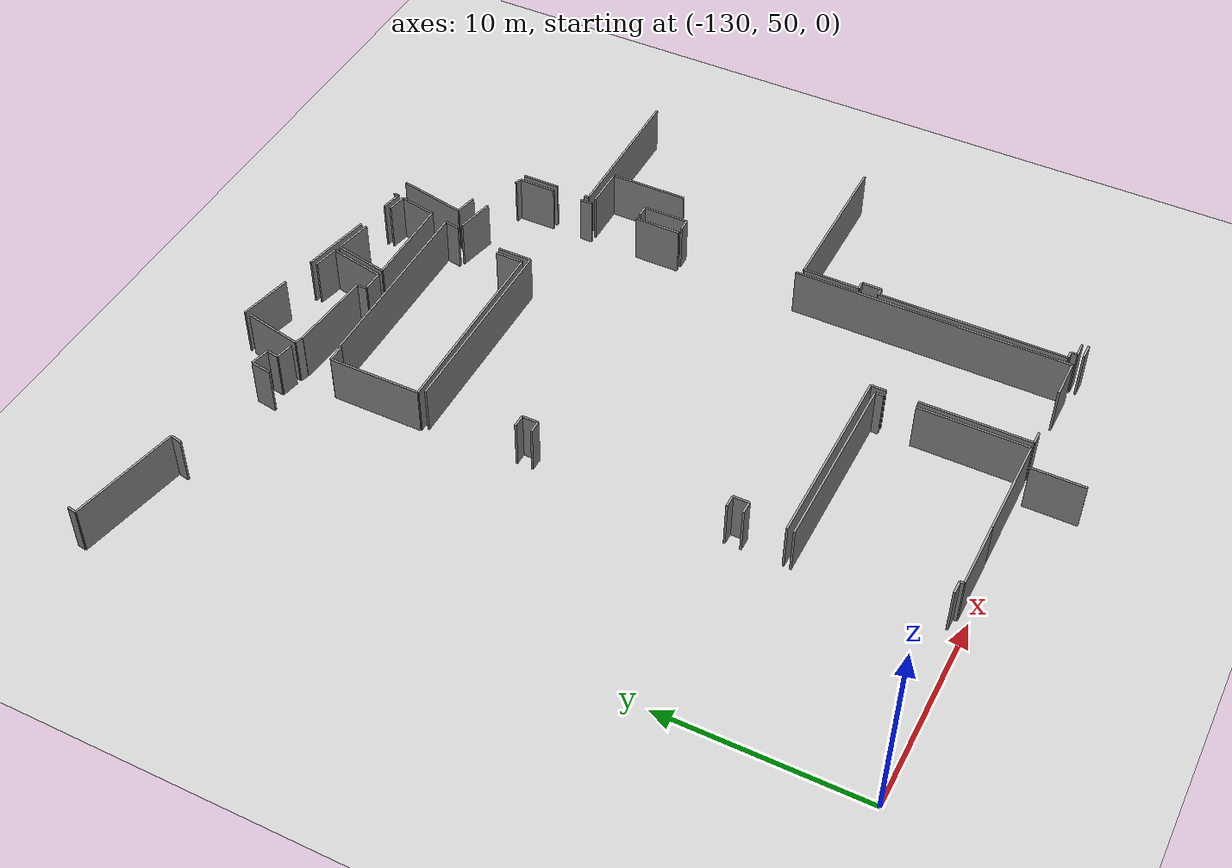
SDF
<sdf version="1.6">
 <world name="default">
  <model name="ground_plane">
   <static>1</static>
   <link name="link">
    <collision name="collision">
     <geometry><plane><normal>0 0 1</normal><size>100 100</size></plane></geometry>
     <surface><friction><ode><mu>100</mu><mu2>50</mu2></ode></friction></surface>
    </collision>
    <visual name="visual">
     <cast_shadows>0</cast_shadows>
     <geometry><plane><normal>0 0 1</normal><size>100 100</size></plane></geometry>
     <material>
      <script><uri>file://media/materials/scripts/gazebo.material</uri><name>Gazebo/Grey</name></script>
     </material>
    </visual>
   </link>
  </model>
  <model name="0510045926_A-40">
   <static>1</static>
   <link name="Wall_319">
    <collision name="Wall_319_Collision">
     <geometry><box><size>0.883386393207 0.1 2.5</size></box></geometry>
     <pose>0.441693196603 0 1.25 0 0 0</pose>
    </collision>
    <visual name="Wall_319_Visual">
     <pose>0.441693196603 0 1.25 0 0 0</pose>
     <geometry><box><size>0.883386393207 0.1 2.5</size></box></geometry>
     <material>
      <script><uri>file://media/materials/scripts/gazebo.material</uri><name>Gazebo/Grey</name></script>
      <ambient>1 1 1 1</ambient>
     </material>
    </visual>
    <pose>12.9986356396 -18.2890794058 0 0 0 2.95693310481</pose>
   </link>
   <link name="Wall_320">
    <collision name="Wall_320_Collision">
     <geometry><box><size>0.60882115773 0.1 2.5</size></box></geometry>
     <pose>0.304410578865 0 1.25 0 0 0</pose>
    </collision>
    <visual name="Wall_320_Visual">
     <pose>0.304410578865 0 1.25 0 0 0</pose>
     <geometry><box><size>0.60882115773 0.1 2.5</size></box></geometry>
     <material>
      <script><uri>file://media/materials/scripts/gazebo.material</uri><name>Gazebo/Grey</name></script>
      <ambient>1 1 1 1</ambient>
     </material>
    </visual>
    <pose>12.1302678588 -18.1268791684 0 0 0 1.41380429897</pose>
   </link>
   <link name="Wall_321">
    <collision name="Wall_321_Collision">
     <geometry><box><size>0.965517856989 0.1 2.5</size></box></geometry>
     <pose>0.482758928495 0 1.25 0 0 0</pose>
    </collision>
    <visual name="Wall_321_Visual">
     <pose>0.482758928495 0 1.25 0 0 0</pose>
     <geometry><box><size>0.965517856989 0.1 2.5</size></box></geometry>
     <material>
      <script><uri>file://media/materials/scripts/gazebo.material</uri><name>Gazebo/Grey</name></script>
      <ambient>1 1 1 1</ambient>
     </material>
    </visual>
    <pose>12.2254557916 -17.5255452682 0 0 0 2.93264764339</pose>
   </link>
   <link name="Wall_322">
    <collision name="Wall_322_Collision">
     <geometry><box><size>1.06206442476 0.1 2.5</size></box></geometry>
     <pose>0.531032212379 0 1.25 0 0 0</pose>
    </collision>
    <visual name="Wall_322_Visual">
     <pose>0.531032212379 0 1.25 0 0 0</pose>
     <geometry><box><size>1.06206442476 0.1 2.5</size></box></geometry>
     <material>
      <script><uri>file://media/materials/scripts/gazebo.material</uri><name>Gazebo/Grey</name></script>
      <ambient>1 1 1 1</ambient>
     </material>
    </visual>
    <pose>11.2809376646 -17.3252698578 0 0 0 -1.72411797897</pose>
   </link>
   <link name="Wall_323">
    <collision name="Wall_323_Collision">
     <geometry><box><size>0.588417140707 0.1 2.5</size></box></geometry>
     <pose>0.294208570354 0 1.25 0 0 0</pose>
    </collision>
    <visual name="Wall_323_Visual">
     <pose>0.294208570354 0 1.25 0 0 0</pose>
     <geometry><box><size>0.588417140707 0.1 2.5</size></box></geometry>
     <material>
      <script><uri>file://media/materials/scripts/gazebo.material</uri><name>Gazebo/Grey</name></script>
      <ambient>1 1 1 1</ambient>
     </material>
    </visual>
    <pose>5.74531516725 -17.2879561882 0 0 0 1.37763086016</pose>
   </link>
   <link name="Wall_324">
    <collision name="Wall_324_Collision">
     <geometry><box><size>5.5802253407 0.1 2.5</size></box></geometry>
     <pose>2.79011267035 0 1.25 0 0 0</pose>
    </collision>
    <visual name="Wall_324_Visual">
     <pose>2.79011267035 0 1.25 0 0 0</pose>
     <geometry><box><size>5.5802253407 0.1 2.5</size></box></geometry>
     <material>
      <script><uri>file://media/materials/scripts/gazebo.material</uri><name>Gazebo/Grey</name></script>
      <ambient>1 1 1 1</ambient>
     </material>
    </visual>
    <pose>5.85827151406 -16.7104827297 0 0 0 2.95445550031</pose>
   </link>
   <link name="Wall_325">
    <collision name="Wall_325_Collision">
     <geometry><box><size>0.440255944541 0.1 2.5</size></box></geometry>
     <pose>0.22012797227 0 1.25 0 0 0</pose>
    </collision>
    <visual name="Wall_325_Visual">
     <pose>0.22012797227 0 1.25 0 0 0</pose>
     <geometry><box><size>0.440255944541 0.1 2.5</size></box></geometry>
     <material>
      <script><uri>file://media/materials/scripts/gazebo.material</uri><name>Gazebo/Grey</name></script>
      <ambient>1 1 1 1</ambient>
     </material>
    </visual>
    <pose>0.3754719735 -15.672299677 0 0 0 1.38951435968</pose>
   </link>
   <link name="Wall_328">
    <collision name="Wall_328_Collision">
     <geometry><box><size>2.93853428884 0.1 2.5</size></box></geometry>
     <pose>1.46926714442 0 1.25 0 0 0</pose>
    </collision>
    <visual name="Wall_328_Visual">
     <pose>1.46926714442 0 1.25 0 0 0</pose>
     <geometry><box><size>2.93853428884 0.1 2.5</size></box></geometry>
     <material>
      <script><uri>file://media/materials/scripts/gazebo.material</uri><name>Gazebo/Grey</name></script>
      <ambient>1 1 1 1</ambient>
     </material>
    </visual>
    <pose>13.2808995894 -18.3418769791 0 0 0 1.37087658928</pose>
   </link>
   <link name="Wall_330">
    <collision name="Wall_330_Collision">
     <geometry><box><size>1.26859876744 0.1 2.5</size></box></geometry>
     <pose>0.63429938372 0 1.25 0 0 0</pose>
    </collision>
    <visual name="Wall_330_Visual">
     <pose>0.63429938372 0 1.25 0 0 0</pose>
     <geometry><box><size>1.26859876744 0.1 2.5</size></box></geometry>
     <material>
      <script><uri>file://media/materials/scripts/gazebo.material</uri><name>Gazebo/Grey</name></script>
      <ambient>1 1 1 1</ambient>
     </material>
    </visual>
    <pose>18.2377794559 -16.3279541575 0 0 0 -0.204105815056</pose>
   </link>
   <link name="Wall_331">
    <collision name="Wall_331_Collision">
     <geometry><box><size>2.81174349724 0.1 2.5</size></box></geometry>
     <pose>1.40587174862 0 1.25 0 0 0</pose>
    </collision>
    <visual name="Wall_331_Visual">
     <pose>1.40587174862 0 1.25 0 0 0</pose>
     <geometry><box><size>2.81174349724 0.1 2.5</size></box></geometry>
     <material>
      <script><uri>file://media/materials/scripts/gazebo.material</uri><name>Gazebo/Grey</name></script>
      <ambient>1 1 1 1</ambient>
     </material>
    </visual>
    <pose>19.4800454364 -16.585088493 0 0 0 -1.76162340053</pose>
   </link>
   <link name="Wall_332">
    <collision name="Wall_332_Collision">
     <geometry><box><size>1.06662991268 0.1 2.5</size></box></geometry>
     <pose>0.533314956338 0 1.25 0 0 0</pose>
    </collision>
    <visual name="Wall_332_Visual">
     <pose>0.533314956338 0 1.25 0 0 0</pose>
     <geometry><box><size>1.06662991268 0.1 2.5</size></box></geometry>
     <material>
      <script><uri>file://media/materials/scripts/gazebo.material</uri><name>Gazebo/Grey</name></script>
      <ambient>1 1 1 1</ambient>
     </material>
    </visual>
    <pose>18.9467391787 -19.3457923761 0 0 0 3.13588114978</pose>
   </link>
   <link name="Wall_333">
    <collision name="Wall_333_Collision">
     <geometry><box><size>0.50243585729 0.1 2.5</size></box></geometry>
     <pose>0.251217928645 0 1.25 0 0 0</pose>
    </collision>
    <visual name="Wall_333_Visual">
     <pose>0.251217928645 0 1.25 0 0 0</pose>
     <geometry><box><size>0.50243585729 0.1 2.5</size></box></geometry>
     <material>
      <script><uri>file://media/materials/scripts/gazebo.material</uri><name>Gazebo/Grey</name></script>
      <ambient>1 1 1 1</ambient>
     </material>
    </visual>
    <pose>17.8801266634 -19.3397003484 0 0 0 1.60819041423</pose>
   </link>
   <link name="Wall_334">
    <collision name="Wall_334_Collision">
     <geometry><box><size>4.22580489009 0.1 2.5</size></box></geometry>
     <pose>2.11290244504 0 1.25 0 0 0</pose>
    </collision>
    <visual name="Wall_334_Visual">
     <pose>2.11290244504 0 1.25 0 0 0</pose>
     <geometry><box><size>4.22580489009 0.1 2.5</size></box></geometry>
     <material>
      <script><uri>file://media/materials/scripts/gazebo.material</uri><name>Gazebo/Grey</name></script>
      <ambient>1 1 1 1</ambient>
     </material>
    </visual>
    <pose>17.8613429114 -18.8376157327 0 0 0 3.05534866111</pose>
   </link>
   <link name="Wall_335">
    <collision name="Wall_335_Collision">
     <geometry><box><size>0.393078255334 0.1 2.5</size></box></geometry>
     <pose>0.196539127667 0 1.25 0 0 0</pose>
    </collision>
    <visual name="Wall_335_Visual">
     <pose>0.196539127667 0 1.25 0 0 0</pose>
     <geometry><box><size>0.393078255334 0.1 2.5</size></box></geometry>
     <material>
      <script><uri>file://media/materials/scripts/gazebo.material</uri><name>Gazebo/Grey</name></script>
      <ambient>1 1 1 1</ambient>
     </material>
    </visual>
    <pose>13.6512441063 -18.473617078 0 0 0 2.79982843189</pose>
   </link>
   <link name="Wall_336">
    <collision name="Wall_336_Collision">
     <geometry><box><size>2.76106589319 0.1 2.5</size></box></geometry>
     <pose>1.38053294659 0 1.25 0 0 0</pose>
    </collision>
    <visual name="Wall_336_Visual">
     <pose>1.38053294659 0 1.25 0 0 0</pose>
     <geometry><box><size>2.76106589319 0.1 2.5</size></box></geometry>
     <material>
      <script><uri>file://media/materials/scripts/gazebo.material</uri><name>Gazebo/Grey</name></script>
      <ambient>1 1 1 1</ambient>
     </material>
    </visual>
    <pose>19.2597171015 -19.3630531212 0 0 0 1.37614127646</pose>
   </link>
   <link name="Wall_337">
    <collision name="Wall_337_Collision">
     <geometry><box><size>1.87232206468 0.1 2.5</size></box></geometry>
     <pose>0.936161032342 0 1.25 0 0 0</pose>
    </collision>
    <visual name="Wall_337_Visual">
     <pose>0.936161032342 0 1.25 0 0 0</pose>
     <geometry><box><size>1.87232206468 0.1 2.5</size></box></geometry>
     <material>
      <script><uri>file://media/materials/scripts/gazebo.material</uri><name>Gazebo/Grey</name></script>
      <ambient>1 1 1 1</ambient>
     </material>
    </visual>
    <pose>19.7937848626 -16.6541314736 0 0 0 -0.189578649141</pose>
   </link>
   <link name="Wall_338">
    <collision name="Wall_338_Collision">
     <geometry><box><size>0.961571273498 0.1 2.5</size></box></geometry>
     <pose>0.480785636749 0 1.25 0 0 0</pose>
    </collision>
    <visual name="Wall_338_Visual">
     <pose>0.480785636749 0 1.25 0 0 0</pose>
     <geometry><box><size>0.961571273498 0.1 2.5</size></box></geometry>
     <material>
      <script><uri>file://media/materials/scripts/gazebo.material</uri><name>Gazebo/Grey</name></script>
      <ambient>1 1 1 1</ambient>
     </material>
    </visual>
    <pose>23.3380758077 -17.341007596 0 0 0 -0.172439581988</pose>
   </link>
   <link name="Wall_339">
    <collision name="Wall_339_Collision">
     <geometry><box><size>1.89265710499 0.1 2.5</size></box></geometry>
     <pose>0.946328552497 0 1.25 0 0 0</pose>
    </collision>
    <visual name="Wall_339_Visual">
     <pose>0.946328552497 0 1.25 0 0 0</pose>
     <geometry><box><size>1.89265710499 0.1 2.5</size></box></geometry>
     <material>
      <script><uri>file://media/materials/scripts/gazebo.material</uri><name>Gazebo/Grey</name></script>
      <ambient>1 1 1 1</ambient>
     </material>
    </visual>
    <pose>24.285386114 -17.5060000127 0 0 0 -1.75435649003</pose>
   </link>
   <link name="Wall_340">
    <collision name="Wall_340_Collision">
     <geometry><box><size>4.68020182419 0.1 2.5</size></box></geometry>
     <pose>2.34010091209 0 1.25 0 0 0</pose>
    </collision>
    <visual name="Wall_340_Visual">
     <pose>2.34010091209 0 1.25 0 0 0</pose>
     <geometry><box><size>4.68020182419 0.1 2.5</size></box></geometry>
     <material>
      <script><uri>file://media/materials/scripts/gazebo.material</uri><name>Gazebo/Grey</name></script>
      <ambient>1 1 1 1</ambient>
     </material>
    </visual>
    <pose>23.9399173769 -19.3668606385 0 0 0 3.14077911651</pose>
   </link>
   <link name="Wall_358">
    <collision name="Wall_358_Collision">
     <geometry><box><size>0.257567093711 0.1 2.5</size></box></geometry>
     <pose>0.128783546855 0 1.25 0 0 0</pose>
    </collision>
    <visual name="Wall_358_Visual">
     <pose>0.128783546855 0 1.25 0 0 0</pose>
     <geometry><box><size>0.257567093711 0.1 2.5</size></box></geometry>
     <material>
      <script><uri>file://media/materials/scripts/gazebo.material</uri><name>Gazebo/Grey</name></script>
      <ambient>1 1 1 1</ambient>
     </material>
    </visual>
    <pose>24.3889505848 -16.9493409822 0 0 0 -1.76819188664</pose>
   </link>
   <link name="Wall_359">
    <collision name="Wall_359_Collision">
     <geometry><box><size>1.02889810982 0.1 2.5</size></box></geometry>
     <pose>0.514449054908 0 1.25 0 0 0</pose>
    </collision>
    <visual name="Wall_359_Visual">
     <pose>0.514449054908 0 1.25 0 0 0</pose>
     <geometry><box><size>1.02889810982 0.1 2.5</size></box></geometry>
     <material>
      <script><uri>file://media/materials/scripts/gazebo.material</uri><name>Gazebo/Grey</name></script>
      <ambient>1 1 1 1</ambient>
     </material>
    </visual>
    <pose>24.3384375218 -17.201906297 0 0 0 2.95097074667</pose>
   </link>
   <link name="Wall_360">
    <collision name="Wall_360_Collision">
     <geometry><box><size>3.53660576051 0.1 2.5</size></box></geometry>
     <pose>1.76830288026 0 1.25 0 0 0</pose>
    </collision>
    <visual name="Wall_360_Visual">
     <pose>1.76830288026 0 1.25 0 0 0</pose>
     <geometry><box><size>3.53660576051 0.1 2.5</size></box></geometry>
     <material>
      <script><uri>file://media/materials/scripts/gazebo.material</uri><name>Gazebo/Grey</name></script>
      <ambient>1 1 1 1</ambient>
     </material>
    </visual>
    <pose>21.6698755576 -16.6916989777 0 0 0 2.9500808692</pose>
   </link>
   <link name="Wall_361">
    <collision name="Wall_361_Collision">
     <geometry><box><size>2.68125676444 0.1 2.5</size></box></geometry>
     <pose>1.34062838222 0 1.25 0 0 0</pose>
    </collision>
    <visual name="Wall_361_Visual">
     <pose>1.34062838222 0 1.25 0 0 0</pose>
     <geometry><box><size>2.68125676444 0.1 2.5</size></box></geometry>
     <material>
      <script><uri>file://media/materials/scripts/gazebo.material</uri><name>Gazebo/Grey</name></script>
      <ambient>1 1 1 1</ambient>
     </material>
    </visual>
    <pose>16.4997747219 -15.6941294429 0 0 0 2.94377006865</pose>
   </link>
   <link name="Wall_495">
    <collision name="Wall_495_Collision">
     <geometry><box><size>1.1063864958 0.1 2.5</size></box></geometry>
     <pose>0.553193247901 0 1.25 0 0 0</pose>
    </collision>
    <visual name="Wall_495_Visual">
     <pose>0.553193247901 0 1.25 0 0 0</pose>
     <geometry><box><size>1.1063864958 0.1 2.5</size></box></geometry>
     <material>
      <script><uri>file://media/materials/scripts/gazebo.material</uri><name>Gazebo/Grey</name></script>
      <ambient>1 1 1 1</ambient>
     </material>
    </visual>
    <pose>25.7944321405 -20.628925709 0 0 0 2.94649180287</pose>
   </link>
   <link name="Wall_496">
    <collision name="Wall_496_Collision">
     <geometry><box><size>3.42832065658 0.1 2.5</size></box></geometry>
     <pose>1.71416032829 0 1.25 0 0 0</pose>
    </collision>
    <visual name="Wall_496_Visual">
     <pose>1.71416032829 0 1.25 0 0 0</pose>
     <geometry><box><size>3.42832065658 0.1 2.5</size></box></geometry>
     <material>
      <script><uri>file://media/materials/scripts/gazebo.material</uri><name>Gazebo/Grey</name></script>
      <ambient>1 1 1 1</ambient>
     </material>
    </visual>
    <pose>24.7090358732 -20.4144355673 0 0 0 1.38273760445</pose>
   </link>
   <link name="Wall_578">
    <collision name="Wall_578_Collision">
     <geometry><box><size>4.60455759822 0.1 2.5</size></box></geometry>
     <pose>2.30227879911 0 1.25 0 0 0</pose>
    </collision>
    <visual name="Wall_578_Visual">
     <pose>2.30227879911 0 1.25 0 0 0</pose>
     <geometry><box><size>4.60455759822 0.1 2.5</size></box></geometry>
     <material>
      <script><uri>file://media/materials/scripts/gazebo.material</uri><name>Gazebo/Grey</name></script>
      <ambient>1 1 1 1</ambient>
     </material>
    </visual>
    <pose>13.0986464276 -24.9956403927 0 0 0 1.57079632679</pose>
   </link>
   <link name="Wall_579">
    <collision name="Wall_579_Collision">
     <geometry><box><size>0.846538014887 0.1 2.5</size></box></geometry>
     <pose>0.423269007444 0 1.25 0 0 0</pose>
    </collision>
    <visual name="Wall_579_Visual">
     <pose>0.423269007444 0 1.25 0 0 0</pose>
     <geometry><box><size>0.846538014887 0.1 2.5</size></box></geometry>
     <material>
      <script><uri>file://media/materials/scripts/gazebo.material</uri><name>Gazebo/Grey</name></script>
      <ambient>1 1 1 1</ambient>
     </material>
    </visual>
    <pose>13.0986464276 -20.3910827945 0 0 0 0.0</pose>
   </link>
   <link name="Wall_580">
    <collision name="Wall_580_Collision">
     <geometry><box><size>0.100010787966 0.1 2.5</size></box></geometry>
     <pose>0.0500053939829 0 1.25 0 0 0</pose>
    </collision>
    <visual name="Wall_580_Visual">
     <pose>0.0500053939829 0 1.25 0 0 0</pose>
     <geometry><box><size>0.100010787966 0.1 2.5</size></box></geometry>
     <material>
      <script><uri>file://media/materials/scripts/gazebo.material</uri><name>Gazebo/Grey</name></script>
      <ambient>1 1 1 1</ambient>
     </material>
    </visual>
    <pose>13.9451844425 -20.3910827945 0 0 0 1.57079632679</pose>
   </link>
   <link name="Wall_581">
    <collision name="Wall_581_Collision">
     <geometry><box><size>9.77262775807 0.1 2.5</size></box></geometry>
     <pose>4.88631387904 0 1.25 0 0 0</pose>
    </collision>
    <visual name="Wall_581_Visual">
     <pose>4.88631387904 0 1.25 0 0 0</pose>
     <geometry><box><size>9.77262775807 0.1 2.5</size></box></geometry>
     <material>
      <script><uri>file://media/materials/scripts/gazebo.material</uri><name>Gazebo/Grey</name></script>
      <ambient>1 1 1 1</ambient>
     </material>
    </visual>
    <pose>13.9451844425 -20.2910720065 0 0 0 0.0</pose>
   </link>
   <link name="Wall_582">
    <collision name="Wall_582_Collision">
     <geometry><box><size>0.801386069186 0.1 2.5</size></box></geometry>
     <pose>0.400693034593 0 1.25 0 0 0</pose>
    </collision>
    <visual name="Wall_582_Visual">
     <pose>0.400693034593 0 1.25 0 0 0</pose>
     <geometry><box><size>0.801386069186 0.1 2.5</size></box></geometry>
     <material>
      <script><uri>file://media/materials/scripts/gazebo.material</uri><name>Gazebo/Grey</name></script>
      <ambient>1 1 1 1</ambient>
     </material>
    </visual>
    <pose>23.7178122006 -20.2910720065 0 0 0 -1.76297389449</pose>
   </link>
   <link name="Wall_583">
    <collision name="Wall_583_Collision">
     <geometry><box><size>1.39202832793 0.1 2.5</size></box></geometry>
     <pose>0.696014163964 0 1.25 0 0 0</pose>
    </collision>
    <visual name="Wall_583_Visual">
     <pose>0.696014163964 0 1.25 0 0 0</pose>
     <geometry><box><size>1.39202832793 0.1 2.5</size></box></geometry>
     <material>
      <script><uri>file://media/materials/scripts/gazebo.material</uri><name>Gazebo/Grey</name></script>
      <ambient>1 1 1 1</ambient>
     </material>
    </visual>
    <pose>22.8697511787 -23.598027706 0 0 0 -1.57079632679</pose>
   </link>
   <link name="Wall_584">
    <collision name="Wall_584_Collision">
     <geometry><box><size>9.77110634693 0.1 2.5</size></box></geometry>
     <pose>4.88555317346 0 1.25 0 0 0</pose>
    </collision>
    <visual name="Wall_584_Visual">
     <pose>4.88555317346 0 1.25 0 0 0</pose>
     <geometry><box><size>9.77110634693 0.1 2.5</size></box></geometry>
     <material>
      <script><uri>file://media/materials/scripts/gazebo.material</uri><name>Gazebo/Grey</name></script>
      <ambient>1 1 1 1</ambient>
     </material>
    </visual>
    <pose>22.8697511787 -24.990056034 0 0 0 -3.14102113601</pose>
   </link>
   <link name="Wall_585">
    <collision name="Wall_585_Collision">
     <geometry><box><size>3.38107536981 0.1 2.5</size></box></geometry>
     <pose>1.6905376849 0 1.25 0 0 0</pose>
    </collision>
    <visual name="Wall_585_Visual">
     <pose>1.6905376849 0 1.25 0 0 0</pose>
     <geometry><box><size>3.38107536981 0.1 2.5</size></box></geometry>
     <material>
      <script><uri>file://media/materials/scripts/gazebo.material</uri><name>Gazebo/Grey</name></script>
      <ambient>1 1 1 1</ambient>
     </material>
    </visual>
    <pose>17.3341286814 -50.5923100842 0 0 0 3.14159265359</pose>
   </link>
   <link name="Wall_586">
    <collision name="Wall_586_Collision">
     <geometry><box><size>0.202306086316 0.1 2.5</size></box></geometry>
     <pose>0.101153043158 0 1.25 0 0 0</pose>
    </collision>
    <visual name="Wall_586_Visual">
     <pose>0.101153043158 0 1.25 0 0 0</pose>
     <geometry><box><size>0.202306086316 0.1 2.5</size></box></geometry>
     <material>
      <script><uri>file://media/materials/scripts/gazebo.material</uri><name>Gazebo/Grey</name></script>
      <ambient>1 1 1 1</ambient>
     </material>
    </visual>
    <pose>13.9530533116 -50.5923100842 0 0 0 1.57079632679</pose>
   </link>
   <link name="Wall_587">
    <collision name="Wall_587_Collision">
     <geometry><box><size>0.664031018574 0.1 2.5</size></box></geometry>
     <pose>0.332015509287 0 1.25 0 0 0</pose>
    </collision>
    <visual name="Wall_587_Visual">
     <pose>0.332015509287 0 1.25 0 0 0</pose>
     <geometry><box><size>0.664031018574 0.1 2.5</size></box></geometry>
     <material>
      <script><uri>file://media/materials/scripts/gazebo.material</uri><name>Gazebo/Grey</name></script>
      <ambient>1 1 1 1</ambient>
     </material>
    </visual>
    <pose>13.9530533116 -50.3900039979 0 0 0 3.14159265359</pose>
   </link>
   <link name="Wall_588">
    <collision name="Wall_588_Collision">
     <geometry><box><size>9.16240965079 0.1 2.5</size></box></geometry>
     <pose>4.58120482539 0 1.25 0 0 0</pose>
    </collision>
    <visual name="Wall_588_Visual">
     <pose>4.58120482539 0 1.25 0 0 0</pose>
     <geometry><box><size>9.16240965079 0.1 2.5</size></box></geometry>
     <material>
      <script><uri>file://media/materials/scripts/gazebo.material</uri><name>Gazebo/Grey</name></script>
      <ambient>1 1 1 1</ambient>
     </material>
    </visual>
    <pose>13.289022293 -43.2735003141 0 0 0 0.0</pose>
   </link>
   <link name="Wall_589">
    <collision name="Wall_589_Collision">
     <geometry><box><size>0.417811565968 0.1 2.5</size></box></geometry>
     <pose>0.208905782984 0 1.25 0 0 0</pose>
    </collision>
    <visual name="Wall_589_Visual">
     <pose>0.208905782984 0 1.25 0 0 0</pose>
     <geometry><box><size>0.417811565968 0.1 2.5</size></box></geometry>
     <material>
      <script><uri>file://media/materials/scripts/gazebo.material</uri><name>Gazebo/Grey</name></script>
      <ambient>1 1 1 1</ambient>
     </material>
    </visual>
    <pose>22.4514319438 -43.2735003141 0 0 0 -1.57079632679</pose>
   </link>
   <link name="Wall_590">
    <collision name="Wall_590_Collision">
     <geometry><box><size>5.36555339091 0.1 2.5</size></box></geometry>
     <pose>2.68277669546 0 1.25 0 0 0</pose>
    </collision>
    <visual name="Wall_590_Visual">
     <pose>2.68277669546 0 1.25 0 0 0</pose>
     <geometry><box><size>5.36555339091 0.1 2.5</size></box></geometry>
     <material>
      <script><uri>file://media/materials/scripts/gazebo.material</uri><name>Gazebo/Grey</name></script>
      <ambient>1 1 1 1</ambient>
     </material>
    </visual>
    <pose>22.4514319438 -45.2285335347 0 0 0 -1.57079632679</pose>
   </link>
   <link name="Wall_591">
    <collision name="Wall_591_Collision">
     <geometry><box><size>5.11730357089 0.1 2.5</size></box></geometry>
     <pose>2.55865178544 0 1.25 0 0 0</pose>
    </collision>
    <visual name="Wall_591_Visual">
     <pose>2.55865178544 0 1.25 0 0 0</pose>
     <geometry><box><size>5.11730357089 0.1 2.5</size></box></geometry>
     <material>
      <script><uri>file://media/materials/scripts/gazebo.material</uri><name>Gazebo/Grey</name></script>
      <ambient>1 1 1 1</ambient>
     </material>
    </visual>
    <pose>22.4514319438 -50.5940869256 0 0 0 3.14124543138</pose>
   </link>
   <link name="Wall_592">
    <collision name="Wall_592_Collision">
     <geometry><box><size>9.89852966373 0.1 2.5</size></box></geometry>
     <pose>4.94926483187 0 1.25 0 0 0</pose>
    </collision>
    <visual name="Wall_592_Visual">
     <pose>4.94926483187 0 1.25 0 0 0</pose>
     <geometry><box><size>9.89852966373 0.1 2.5</size></box></geometry>
     <material>
      <script><uri>file://media/materials/scripts/gazebo.material</uri><name>Gazebo/Grey</name></script>
      <ambient>1 1 1 1</ambient>
     </material>
    </visual>
    <pose>13.278615079 -25.277142839 0 0 0 0.0</pose>
   </link>
   <link name="Wall_593">
    <collision name="Wall_593_Collision">
     <geometry><box><size>1.71109827837 0.1 2.5</size></box></geometry>
     <pose>0.855549139184 0 1.25 0 0 0</pose>
    </collision>
    <visual name="Wall_593_Visual">
     <pose>0.855549139184 0 1.25 0 0 0</pose>
     <geometry><box><size>1.71109827837 0.1 2.5</size></box></geometry>
     <material>
      <script><uri>file://media/materials/scripts/gazebo.material</uri><name>Gazebo/Grey</name></script>
      <ambient>1 1 1 1</ambient>
     </material>
    </visual>
    <pose>23.1771447428 -25.277142839 0 0 0 1.57079632679</pose>
   </link>
   <link name="Wall_594">
    <collision name="Wall_594_Collision">
     <geometry><box><size>1.92216046032 0.1 2.5</size></box></geometry>
     <pose>0.961080230161 0 1.25 0 0 0</pose>
    </collision>
    <visual name="Wall_594_Visual">
     <pose>0.961080230161 0 1.25 0 0 0</pose>
     <geometry><box><size>1.92216046032 0.1 2.5</size></box></geometry>
     <material>
      <script><uri>file://media/materials/scripts/gazebo.material</uri><name>Gazebo/Grey</name></script>
      <ambient>1 1 1 1</ambient>
     </material>
    </visual>
    <pose>23.8099541194 -21.1307564902 0 0 0 -0.205605470957</pose>
   </link>
   <link name="Wall_595">
    <collision name="Wall_595_Collision">
     <geometry><box><size>0.33082931454 0.1 2.5</size></box></geometry>
     <pose>0.16541465727 0 1.25 0 0 0</pose>
    </collision>
    <visual name="Wall_595_Visual">
     <pose>0.16541465727 0 1.25 0 0 0</pose>
     <geometry><box><size>0.33082931454 0.1 2.5</size></box></geometry>
     <material>
      <script><uri>file://media/materials/scripts/gazebo.material</uri><name>Gazebo/Grey</name></script>
      <ambient>1 1 1 1</ambient>
     </material>
    </visual>
    <pose>27.8596295286 -21.920943249 0 0 0 -0.287047327944</pose>
   </link>
   <link name="Wall_596">
    <collision name="Wall_596_Collision">
     <geometry><box><size>1.86644498455 0.1 2.5</size></box></geometry>
     <pose>0.933222492274 0 1.25 0 0 0</pose>
    </collision>
    <visual name="Wall_596_Visual">
     <pose>0.933222492274 0 1.25 0 0 0</pose>
     <geometry><box><size>1.86644498455 0.1 2.5</size></box></geometry>
     <material>
      <script><uri>file://media/materials/scripts/gazebo.material</uri><name>Gazebo/Grey</name></script>
      <ambient>1 1 1 1</ambient>
     </material>
    </visual>
    <pose>28.1769226376 -22.0146081747 0 0 0 -1.57079632679</pose>
   </link>
   <link name="Wall_597">
    <collision name="Wall_597_Collision">
     <geometry><box><size>0.627732686902 0.1 2.5</size></box></geometry>
     <pose>0.313866343451 0 1.25 0 0 0</pose>
    </collision>
    <visual name="Wall_597_Visual">
     <pose>0.313866343451 0 1.25 0 0 0</pose>
     <geometry><box><size>0.627732686902 0.1 2.5</size></box></geometry>
     <material>
      <script><uri>file://media/materials/scripts/gazebo.material</uri><name>Gazebo/Grey</name></script>
      <ambient>1 1 1 1</ambient>
     </material>
    </visual>
    <pose>28.1769226376 -25.3916221927 0 0 0 -1.57079632679</pose>
   </link>
   <link name="Wall_598">
    <collision name="Wall_598_Collision">
     <geometry><box><size>2.29542526795 0.1 2.5</size></box></geometry>
     <pose>1.14771263398 0 1.25 0 0 0</pose>
    </collision>
    <visual name="Wall_598_Visual">
     <pose>1.14771263398 0 1.25 0 0 0</pose>
     <geometry><box><size>2.29542526795 0.1 2.5</size></box></geometry>
     <material>
      <script><uri>file://media/materials/scripts/gazebo.material</uri><name>Gazebo/Grey</name></script>
      <ambient>1 1 1 1</ambient>
     </material>
    </visual>
    <pose>28.1769226376 -28.4752035435 0 0 0 -1.57079632679</pose>
   </link>
   <link name="Wall_599">
    <collision name="Wall_599_Collision">
     <geometry><box><size>13.6626412748 0.1 2.5</size></box></geometry>
     <pose>6.83132063738 0 1.25 0 0 0</pose>
    </collision>
    <visual name="Wall_599_Visual">
     <pose>6.83132063738 0 1.25 0 0 0</pose>
     <geometry><box><size>13.6626412748 0.1 2.5</size></box></geometry>
     <material>
      <script><uri>file://media/materials/scripts/gazebo.material</uri><name>Gazebo/Grey</name></script>
      <ambient>1 1 1 1</ambient>
     </material>
    </visual>
    <pose>28.1769226376 -36.9471833891 0 0 0 -1.57079632679</pose>
   </link>
   <link name="Wall_600">
    <collision name="Wall_600_Collision">
     <geometry><box><size>1.96975562085 0.1 2.5</size></box></geometry>
     <pose>0.984877810424 0 1.25 0 0 0</pose>
    </collision>
    <visual name="Wall_600_Visual">
     <pose>0.984877810424 0 1.25 0 0 0</pose>
     <geometry><box><size>1.96975562085 0.1 2.5</size></box></geometry>
     <material>
      <script><uri>file://media/materials/scripts/gazebo.material</uri><name>Gazebo/Grey</name></script>
      <ambient>1 1 1 1</ambient>
     </material>
    </visual>
    <pose>28.1769226376 -50.6098246638 0 0 0 3.14159265359</pose>
   </link>
   <link name="Wall_601">
    <collision name="Wall_601_Collision">
     <geometry><box><size>0.671899887678 0.1 2.5</size></box></geometry>
     <pose>0.335949943839 0 1.25 0 0 0</pose>
    </collision>
    <visual name="Wall_601_Visual">
     <pose>0.335949943839 0 1.25 0 0 0</pose>
     <geometry><box><size>0.671899887678 0.1 2.5</size></box></geometry>
     <material>
      <script><uri>file://media/materials/scripts/gazebo.material</uri><name>Gazebo/Grey</name></script>
      <ambient>1 1 1 1</ambient>
     </material>
    </visual>
    <pose>23.4637238788 -50.6098246638 0 0 0 3.14159265359</pose>
   </link>
   <link name="Wall_602">
    <collision name="Wall_602_Collision">
     <geometry><box><size>5.42266615054 0.1 2.5</size></box></geometry>
     <pose>2.71133307527 0 1.25 0 0 0</pose>
    </collision>
    <visual name="Wall_602_Visual">
     <pose>2.71133307527 0 1.25 0 0 0</pose>
     <geometry><box><size>5.42266615054 0.1 2.5</size></box></geometry>
     <material>
      <script><uri>file://media/materials/scripts/gazebo.material</uri><name>Gazebo/Grey</name></script>
      <ambient>1 1 1 1</ambient>
     </material>
    </visual>
    <pose>22.7918239912 -50.6098246638 0 0 0 1.57079632679</pose>
   </link>
   <link name="Wall_603">
    <collision name="Wall_603_Collision">
     <geometry><box><size>0.753634592564 0.1 2.5</size></box></geometry>
     <pose>0.376817296282 0 1.25 0 0 0</pose>
    </collision>
    <visual name="Wall_603_Visual">
     <pose>0.376817296282 0 1.25 0 0 0</pose>
     <geometry><box><size>0.753634592564 0.1 2.5</size></box></geometry>
     <material>
      <script><uri>file://media/materials/scripts/gazebo.material</uri><name>Gazebo/Grey</name></script>
      <ambient>1 1 1 1</ambient>
     </material>
    </visual>
    <pose>22.7918239912 -43.6768433143 0 0 0 1.57079632679</pose>
   </link>
   <link name="Wall_604">
    <collision name="Wall_604_Collision">
     <geometry><box><size>9.48579478751 0.1 2.5</size></box></geometry>
     <pose>4.74289739375 0 1.25 0 0 0</pose>
    </collision>
    <visual name="Wall_604_Visual">
     <pose>4.74289739375 0 1.25 0 0 0</pose>
     <geometry><box><size>9.48579478751 0.1 2.5</size></box></geometry>
     <material>
      <script><uri>file://media/materials/scripts/gazebo.material</uri><name>Gazebo/Grey</name></script>
      <ambient>1 1 1 1</ambient>
     </material>
    </visual>
    <pose>22.7918239912 -42.9232087218 0 0 0 3.14159265359</pose>
   </link>
   <link name="Wall_605">
    <collision name="Wall_605_Collision">
     <geometry><box><size>0.621132990234 0.1 2.5</size></box></geometry>
     <pose>0.310566495117 0 1.25 0 0 0</pose>
    </collision>
    <visual name="Wall_605_Visual">
     <pose>0.310566495117 0 1.25 0 0 0</pose>
     <geometry><box><size>0.621132990234 0.1 2.5</size></box></geometry>
     <material>
      <script><uri>file://media/materials/scripts/gazebo.material</uri><name>Gazebo/Grey</name></script>
      <ambient>1 1 1 1</ambient>
     </material>
    </visual>
    <pose>13.3060292037 -40.9171547692 0 0 0 0.0</pose>
   </link>
   <link name="Wall_606">
    <collision name="Wall_606_Collision">
     <geometry><box><size>0.778256537825 0.1 2.5</size></box></geometry>
     <pose>0.389128268912 0 1.25 0 0 0</pose>
    </collision>
    <visual name="Wall_606_Visual">
     <pose>0.389128268912 0 1.25 0 0 0</pose>
     <geometry><box><size>0.778256537825 0.1 2.5</size></box></geometry>
     <material>
      <script><uri>file://media/materials/scripts/gazebo.material</uri><name>Gazebo/Grey</name></script>
      <ambient>1 1 1 1</ambient>
     </material>
    </visual>
    <pose>13.9271621939 -40.9171547692 0 0 0 1.57079632679</pose>
   </link>
   <link name="Wall_607">
    <collision name="Wall_607_Collision">
     <geometry><box><size>0.619356148823 0.1 2.5</size></box></geometry>
     <pose>0.309678074412 0 1.25 0 0 0</pose>
    </collision>
    <visual name="Wall_607_Visual">
     <pose>0.309678074412 0 1.25 0 0 0</pose>
     <geometry><box><size>0.619356148823 0.1 2.5</size></box></geometry>
     <material>
      <script><uri>file://media/materials/scripts/gazebo.material</uri><name>Gazebo/Grey</name></script>
      <ambient>1 1 1 1</ambient>
     </material>
    </visual>
    <pose>13.9271621939 -40.1388982314 0 0 0 3.14159265359</pose>
   </link>
   <link name="Wall_608">
    <collision name="Wall_608_Collision">
     <geometry><box><size>0.629255693825 0.1 2.5</size></box></geometry>
     <pose>0.314627846912 0 1.25 0 0 0</pose>
    </collision>
    <visual name="Wall_608_Visual">
     <pose>0.314627846912 0 1.25 0 0 0</pose>
     <geometry><box><size>0.629255693825 0.1 2.5</size></box></geometry>
     <material>
      <script><uri>file://media/materials/scripts/gazebo.material</uri><name>Gazebo/Grey</name></script>
      <ambient>1 1 1 1</ambient>
     </material>
    </visual>
    <pose>13.3078060451 -30.670871858 0 0 0 0.0</pose>
   </link>
   <link name="Wall_609">
    <collision name="Wall_609_Collision">
     <geometry><box><size>0.795263448468 0.1 2.5</size></box></geometry>
     <pose>0.397631724234 0 1.25 0 0 0</pose>
    </collision>
    <visual name="Wall_609_Visual">
     <pose>0.397631724234 0 1.25 0 0 0</pose>
     <geometry><box><size>0.795263448468 0.1 2.5</size></box></geometry>
     <material>
      <script><uri>file://media/materials/scripts/gazebo.material</uri><name>Gazebo/Grey</name></script>
      <ambient>1 1 1 1</ambient>
     </material>
    </visual>
    <pose>13.9370617389 -30.670871858 0 0 0 1.57079632679</pose>
   </link>
   <link name="Wall_610">
    <collision name="Wall_610_Collision">
     <geometry><box><size>0.629255693825 0.1 2.5</size></box></geometry>
     <pose>0.314627846912 0 1.25 0 0 0</pose>
    </collision>
    <visual name="Wall_610_Visual">
     <pose>0.314627846912 0 1.25 0 0 0</pose>
     <geometry><box><size>0.629255693825 0.1 2.5</size></box></geometry>
     <material>
      <script><uri>file://media/materials/scripts/gazebo.material</uri><name>Gazebo/Grey</name></script>
      <ambient>1 1 1 1</ambient>
     </material>
    </visual>
    <pose>13.9370617389 -29.8756084095 0 0 0 3.14159265359</pose>
   </link>
   <link name="Wall_611">
    <collision name="Wall_611_Collision">
     <geometry><box><size>1.88218272276 0.1 2.5</size></box></geometry>
     <pose>0.941091361378 0 1.25 0 0 0</pose>
    </collision>
    <visual name="Wall_611_Visual">
     <pose>0.941091361378 0 1.25 0 0 0</pose>
     <geometry><box><size>1.88218272276 0.1 2.5</size></box></geometry>
     <material>
      <script><uri>file://media/materials/scripts/gazebo.material</uri><name>Gazebo/Grey</name></script>
      <ambient>1 1 1 1</ambient>
     </material>
    </visual>
    <pose>28.5277218989 -22.0374532786 0 0 0 -1.57079632679</pose>
   </link>
   <link name="Wall_612">
    <collision name="Wall_612_Collision">
     <geometry><box><size>0.241904266323 0.1 2.5</size></box></geometry>
     <pose>0.120952133162 0 1.25 0 0 0</pose>
    </collision>
    <visual name="Wall_612_Visual">
     <pose>0.120952133162 0 1.25 0 0 0</pose>
     <geometry><box><size>0.241904266323 0.1 2.5</size></box></geometry>
     <material>
      <script><uri>file://media/materials/scripts/gazebo.material</uri><name>Gazebo/Grey</name></script>
      <ambient>1 1 1 1</ambient>
     </material>
    </visual>
    <pose>28.5277218989 -25.4111674483 0 0 0 -1.57079632679</pose>
   </link>
   <link name="Wall_613">
    <collision name="Wall_613_Collision">
     <geometry><box><size>7.70844570798 0.1 2.5</size></box></geometry>
     <pose>3.85422285399 0 1.25 0 0 0</pose>
    </collision>
    <visual name="Wall_613_Visual">
     <pose>3.85422285399 0 1.25 0 0 0</pose>
     <geometry><box><size>7.70844570798 0.1 2.5</size></box></geometry>
     <material>
      <script><uri>file://media/materials/scripts/gazebo.material</uri><name>Gazebo/Grey</name></script>
      <ambient>1 1 1 1</ambient>
     </material>
    </visual>
    <pose>28.5277218989 -25.6530717146 0 0 0 0.0</pose>
   </link>
   <link name="Wall_619">
    <collision name="Wall_619_Collision">
     <geometry><box><size>0.62240216267 0.1 2.5</size></box></geometry>
     <pose>0.311201081335 0 1.25 0 0 0</pose>
    </collision>
    <visual name="Wall_619_Visual">
     <pose>0.311201081335 0 1.25 0 0 0</pose>
     <geometry><box><size>0.62240216267 0.1 2.5</size></box></geometry>
     <material>
      <script><uri>file://media/materials/scripts/gazebo.material</uri><name>Gazebo/Grey</name></script>
      <ambient>1 1 1 1</ambient>
     </material>
    </visual>
    <pose>28.4840623671 -30.7533680664 0 0 0 0.0</pose>
   </link>
   <link name="Wall_620">
    <collision name="Wall_620_Collision">
     <geometry><box><size>2.27004181923 0.1 2.5</size></box></geometry>
     <pose>1.13502090962 0 1.25 0 0 0</pose>
    </collision>
    <visual name="Wall_620_Visual">
     <pose>1.13502090962 0 1.25 0 0 0</pose>
     <geometry><box><size>2.27004181923 0.1 2.5</size></box></geometry>
     <material>
      <script><uri>file://media/materials/scripts/gazebo.material</uri><name>Gazebo/Grey</name></script>
      <ambient>1 1 1 1</ambient>
     </material>
    </visual>
    <pose>29.1064645298 -30.7533680664 0 0 0 1.57079632679</pose>
   </link>
   <link name="Wall_621">
    <collision name="Wall_621_Collision">
     <geometry><box><size>0.572650603174 0.1 2.5</size></box></geometry>
     <pose>0.286325301587 0 1.25 0 0 0</pose>
    </collision>
    <visual name="Wall_621_Visual">
     <pose>0.286325301587 0 1.25 0 0 0</pose>
     <geometry><box><size>0.572650603174 0.1 2.5</size></box></geometry>
     <material>
      <script><uri>file://media/materials/scripts/gazebo.material</uri><name>Gazebo/Grey</name></script>
      <ambient>1 1 1 1</ambient>
     </material>
    </visual>
    <pose>29.1064645298 -28.4833262471 0 0 0 3.14159265359</pose>
   </link>
   <link name="Wall_622">
    <collision name="Wall_622_Collision">
     <geometry><box><size>2.06621272599 0.1 2.5</size></box></geometry>
     <pose>1.033106363 0 1.25 0 0 0</pose>
    </collision>
    <visual name="Wall_622_Visual">
     <pose>1.033106363 0 1.25 0 0 0</pose>
     <geometry><box><size>2.06621272599 0.1 2.5</size></box></geometry>
     <material>
      <script><uri>file://media/materials/scripts/gazebo.material</uri><name>Gazebo/Grey</name></script>
      <ambient>1 1 1 1</ambient>
     </material>
    </visual>
    <pose>28.5338139266 -26.0188472107 0 0 0 0.0</pose>
   </link>
   <link name="Wall_623">
    <collision name="Wall_623_Collision">
     <geometry><box><size>3.86092351572 0.1 2.5</size></box></geometry>
     <pose>1.93046175786 0 1.25 0 0 0</pose>
    </collision>
    <visual name="Wall_623_Visual">
     <pose>1.93046175786 0 1.25 0 0 0</pose>
     <geometry><box><size>3.86092351572 0.1 2.5</size></box></geometry>
     <material>
      <script><uri>file://media/materials/scripts/gazebo.material</uri><name>Gazebo/Grey</name></script>
      <ambient>1 1 1 1</ambient>
     </material>
    </visual>
    <pose>30.6000266526 -26.0188472107 0 0 0 -1.56356436872</pose>
   </link>
   <link name="Wall_625">
    <collision name="Wall_625_Collision">
     <geometry><box><size>2.59038094211 0.1 2.5</size></box></geometry>
     <pose>1.29519047105 0 1.25 0 0 0</pose>
    </collision>
    <visual name="Wall_625_Visual">
     <pose>1.29519047105 0 1.25 0 0 0</pose>
     <geometry><box><size>2.59038094211 0.1 2.5</size></box></geometry>
     <material>
      <script><uri>file://media/materials/scripts/gazebo.material</uri><name>Gazebo/Grey</name></script>
      <ambient>1 1 1 1</ambient>
     </material>
    </visual>
    <pose>21.3056230685 -50.9273716073 0 0 0 -1.57079632679</pose>
   </link>
   <link name="Wall_677">
    <collision name="Wall_677_Collision">
     <geometry><box><size>7.71073021836 0.1 2.5</size></box></geometry>
     <pose>3.85536510918 0 1.25 0 0 0</pose>
    </collision>
    <visual name="Wall_677_Visual">
     <pose>3.85536510918 0 1.25 0 0 0</pose>
     <geometry><box><size>7.71073021836 0.1 2.5</size></box></geometry>
     <material>
      <script><uri>file://media/materials/scripts/gazebo.material</uri><name>Gazebo/Grey</name></script>
      <ambient>1 1 1 1</ambient>
     </material>
    </visual>
    <pose>28.5152840091 -37.2342701941 0 0 0 0.0</pose>
   </link>
   <link name="Wall_681">
    <collision name="Wall_681_Collision">
     <geometry><box><size>0.71378257807 0.1 2.5</size></box></geometry>
     <pose>0.356891289035 0 1.25 0 0 0</pose>
    </collision>
    <visual name="Wall_681_Visual">
     <pose>0.356891289035 0 1.25 0 0 0</pose>
     <geometry><box><size>0.71378257807 0.1 2.5</size></box></geometry>
     <material>
      <script><uri>file://media/materials/scripts/gazebo.material</uri><name>Gazebo/Grey</name></script>
      <ambient>1 1 1 1</ambient>
     </material>
    </visual>
    <pose>29.6471319876 -50.6037326361 0 0 0 3.14159265359</pose>
   </link>
   <link name="Wall_682">
    <collision name="Wall_682_Collision">
     <geometry><box><size>0.316023936592 0.1 2.5</size></box></geometry>
     <pose>0.158011968296 0 1.25 0 0 0</pose>
    </collision>
    <visual name="Wall_682_Visual">
     <pose>0.158011968296 0 1.25 0 0 0</pose>
     <geometry><box><size>0.316023936592 0.1 2.5</size></box></geometry>
     <material>
      <script><uri>file://media/materials/scripts/gazebo.material</uri><name>Gazebo/Grey</name></script>
      <ambient>1 1 1 1</ambient>
     </material>
    </visual>
    <pose>28.9333494095 -50.6037326361 0 0 0 1.57079632679</pose>
   </link>
   <link name="Wall_683">
    <collision name="Wall_683_Collision">
     <geometry><box><size>0.398520144939 0.1 2.5</size></box></geometry>
     <pose>0.19926007247 0 1.25 0 0 0</pose>
    </collision>
    <visual name="Wall_683_Visual">
     <pose>0.19926007247 0 1.25 0 0 0</pose>
     <geometry><box><size>0.398520144939 0.1 2.5</size></box></geometry>
     <material>
      <script><uri>file://media/materials/scripts/gazebo.material</uri><name>Gazebo/Grey</name></script>
      <ambient>1 1 1 1</ambient>
     </material>
    </visual>
    <pose>28.9333494095 -50.2877086995 0 0 0 3.14159265359</pose>
   </link>
   <link name="Wall_684">
    <collision name="Wall_684_Collision">
     <geometry><box><size>9.27435065965 0.1 2.5</size></box></geometry>
     <pose>4.63717532983 0 1.25 0 0 0</pose>
    </collision>
    <visual name="Wall_684_Visual">
     <pose>4.63717532983 0 1.25 0 0 0</pose>
     <geometry><box><size>9.27435065965 0.1 2.5</size></box></geometry>
     <material>
      <script><uri>file://media/materials/scripts/gazebo.material</uri><name>Gazebo/Grey</name></script>
      <ambient>1 1 1 1</ambient>
     </material>
    </visual>
    <pose>28.5348292646 -50.2877086995 0 0 0 1.57079632679</pose>
   </link>
   <link name="Wall_685">
    <collision name="Wall_685_Collision">
     <geometry><box><size>0.378213385962 0.1 2.5</size></box></geometry>
     <pose>0.189106692981 0 1.25 0 0 0</pose>
    </collision>
    <visual name="Wall_685_Visual">
     <pose>0.189106692981 0 1.25 0 0 0</pose>
     <geometry><box><size>0.378213385962 0.1 2.5</size></box></geometry>
     <material>
      <script><uri>file://media/materials/scripts/gazebo.material</uri><name>Gazebo/Grey</name></script>
      <ambient>1 1 1 1</ambient>
     </material>
    </visual>
    <pose>28.5348292646 -41.0133580399 0 0 0 0.0</pose>
   </link>
   <link name="Wall_686">
    <collision name="Wall_686_Collision">
     <geometry><box><size>0.967109396318 0.1 2.5</size></box></geometry>
     <pose>0.483554698159 0 1.25 0 0 0</pose>
    </collision>
    <visual name="Wall_686_Visual">
     <pose>0.483554698159 0 1.25 0 0 0</pose>
     <geometry><box><size>0.967109396318 0.1 2.5</size></box></geometry>
     <material>
      <script><uri>file://media/materials/scripts/gazebo.material</uri><name>Gazebo/Grey</name></script>
      <ambient>1 1 1 1</ambient>
     </material>
    </visual>
    <pose>28.9130426505 -41.0133580399 0 0 0 1.57079632679</pose>
   </link>
   <link name="Wall_687">
    <collision name="Wall_687_Collision">
     <geometry><box><size>0.411211869301 0.1 2.5</size></box></geometry>
     <pose>0.20560593465 0 1.25 0 0 0</pose>
    </collision>
    <visual name="Wall_687_Visual">
     <pose>0.20560593465 0 1.25 0 0 0</pose>
     <geometry><box><size>0.411211869301 0.1 2.5</size></box></geometry>
     <material>
      <script><uri>file://media/materials/scripts/gazebo.material</uri><name>Gazebo/Grey</name></script>
      <ambient>1 1 1 1</ambient>
     </material>
    </visual>
    <pose>28.9130426505 -40.0462486436 0 0 0 3.14159265359</pose>
   </link>
   <link name="Wall_688">
    <collision name="Wall_688_Collision">
     <geometry><box><size>2.81201063112 0.1 2.5</size></box></geometry>
     <pose>1.40600531556 0 1.25 0 0 0</pose>
    </collision>
    <visual name="Wall_688_Visual">
     <pose>1.40600531556 0 1.25 0 0 0</pose>
     <geometry><box><size>2.81201063112 0.1 2.5</size></box></geometry>
     <material>
      <script><uri>file://media/materials/scripts/gazebo.material</uri><name>Gazebo/Grey</name></script>
      <ambient>1 1 1 1</ambient>
     </material>
    </visual>
    <pose>28.5018307812 -40.0462486436 0 0 0 1.56601210621</pose>
   </link>
   <link name="Wall_760">
    <collision name="Wall_760_Collision">
     <geometry><box><size>0.758203613334 0.1 2.5</size></box></geometry>
     <pose>0.379101806667 0 1.25 0 0 0</pose>
    </collision>
    <visual name="Wall_760_Visual">
     <pose>0.379101806667 0 1.25 0 0 0</pose>
     <geometry><box><size>0.758203613334 0.1 2.5</size></box></geometry>
     <material>
      <script><uri>file://media/materials/scripts/gazebo.material</uri><name>Gazebo/Grey</name></script>
      <ambient>1 1 1 1</ambient>
     </material>
    </visual>
    <pose>28.9277650508 -50.9096031932 0 0 0 0.0</pose>
   </link>
   <pose>-133.95 101.113233661 0 0 0 0</pose>
  </model>
 </world>
</sdf>
